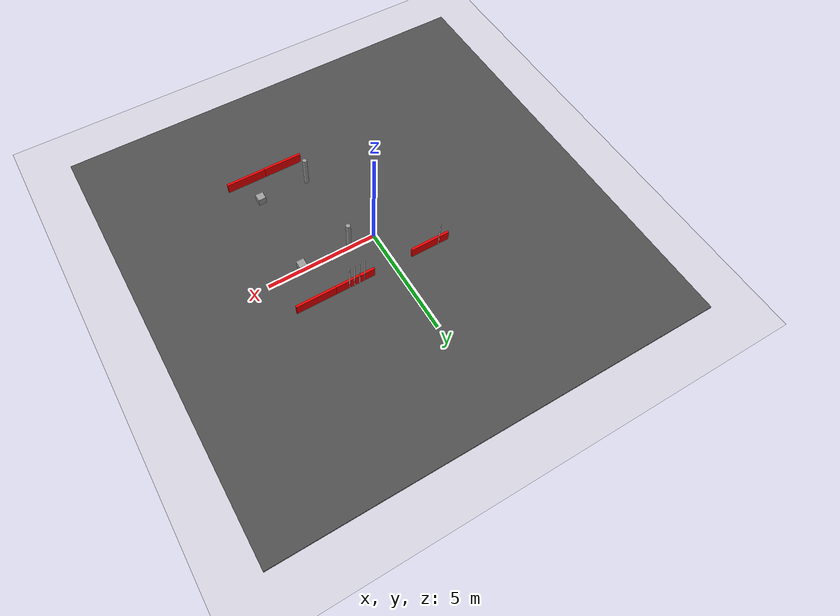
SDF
<sdf version="1.7">
 <world name="default">
  <model name="ground_plane">
   <static>1</static>
   <link name="link">
    <collision name="collision">
     <geometry><plane><normal>0 0 1</normal><size>100 100</size></plane></geometry>
     <surface><friction><ode><mu>100</mu><mu2>50</mu2></ode></friction></surface>
    </collision>
    <visual name="visual">
     <cast_shadows>0</cast_shadows>
     <geometry><plane><normal>0 0 1</normal><size>100 100</size></plane></geometry>
     <material>
      <script><uri>file://media/materials/scripts/gazebo.material</uri><name>Gazebo/Grey</name></script>
     </material>
    </visual>
   </link>
  </model>
  <model name="asphalt_plane">
   <static>1</static>
   <link name="link">
    <collision name="collision"><geometry><box><size>20 20 0.1</size></box></geometry></collision>
    <visual name="visual">
     <cast_shadows>0</cast_shadows>
     <geometry><box><size>20 20 0.1</size></box></geometry>
     <material>
      <script>
       <uri>model://asphalt_plane/materials/scripts</uri>
       <uri>model://asphalt_plane/materials/textures</uri>
       <name>vrc/asphalt</name>
      </script>
     </material>
    </visual>
    <velocity_decay><linear>0</linear><angular>0</angular></velocity_decay>
   </link>
   <pose>0.000359 -0.189252 0 0 -0 0</pose>
  </model>
  <model name="circular_reflector_0_clone">
   <static>1</static>
   <pose>1.17274 -0.124319 0 0 -0 0</pose>
   <link name="link">
    <inertial>
     <mass>1</mass>
     <inertia><ixx>0</ixx><ixy>0</ixy><ixz>0</ixz><iyy>0</iyy><iyz>0</iyz><izz>0</izz></inertia>
    </inertial>
    <collision name="collision">
     <laser_retro>1000</laser_retro>
     <geometry><cylinder><radius>0.05</radius><length>1</length></cylinder></geometry>
    </collision>
    <visual name="visual">
     <geometry><cylinder><radius>0.1</radius><length>3</length></cylinder></geometry>
     <material>
      <script><name>Gazebo/Grey</name><uri>file://media/materials/scripts/gazebo.material</uri></script>
      <ambient>1 1 1 1</ambient>
      <diffuse>1 1 1 1</diffuse>
      <specular>1 1 1 1</specular>
      <emissive>1 1 1 1</emissive>
     </material>
     <laser_retro>1000</laser_retro>
    </visual>
   </link>
  </model>
  <model name="circular_reflector_0_clone_clone">
   <static>1</static>
   <pose>1.12879 -4.06871 0 0 -0 0</pose>
   <link name="link">
    <inertial>
     <mass>1</mass>
     <inertia><ixx>0</ixx><ixy>0</ixy><ixz>0</ixz><iyy>0</iyy><iyz>0</iyz><izz>0</izz></inertia>
    </inertial>
    <collision name="collision">
     <laser_retro>1000</laser_retro>
     <geometry><cylinder><radius>0.05</radius><length>1</length></cylinder></geometry>
    </collision>
    <visual name="visual">
     <geometry><cylinder><radius>0.1</radius><length>3</length></cylinder></geometry>
     <material>
      <script><name>Gazebo/Grey</name><uri>file://media/materials/scripts/gazebo.material</uri></script>
      <ambient>1 1 1 1</ambient>
      <diffuse>1 1 1 1</diffuse>
      <specular>1 1 1 1</specular>
      <emissive>1 1 1 1</emissive>
     </material>
     <laser_retro>1000</laser_retro>
    </visual>
   </link>
  </model>
  <model name="square_reflector">
   <static>1</static>
   <pose>3.36137 -4.08403 0.221803 0 -0 0</pose>
   <link name="link">
    <inertial>
     <mass>1</mass>
     <inertia><ixx>0</ixx><ixy>0</ixy><ixz>0</ixz><iyy>0</iyy><iyz>0</iyz><izz>0</izz></inertia>
    </inertial>
    <collision name="collision">
     <laser_retro>1000</laser_retro>
     <geometry><box><size>0.35 0.35 0.35</size></box></geometry>
    </collision>
    <visual name="visual">
     <geometry><box><size>0.35 0.35 0.35</size></box></geometry>
     <material>
      <script><name>Gazebo/Grey</name><uri>file://media/materials/scripts/gazebo.material</uri></script>
      <ambient>1 1 1 1</ambient>
      <diffuse>1 1 1 1</diffuse>
      <specular>1 1 1 1</specular>
      <emissive>1 1 1 1</emissive>
     </material>
     <laser_retro>1000</laser_retro>
    </visual>
   </link>
  </model>
  <model name="square_reflector_clone">
   <static>1</static>
   <pose>3.39259 -0.127452 0.221803 0 -0 0</pose>
   <link name="link">
    <inertial>
     <mass>1</mass>
     <inertia><ixx>0</ixx><ixy>0</ixy><ixz>0</ixz><iyy>0</iyy><iyz>0</iyz><izz>0</izz></inertia>
    </inertial>
    <collision name="collision">
     <laser_retro>1000</laser_retro>
     <geometry><box><size>0.35 0.35 0.35</size></box></geometry>
    </collision>
    <visual name="visual">
     <geometry><box><size>0.35 0.35 0.35</size></box></geometry>
     <material>
      <script><name>Gazebo/Grey</name><uri>file://media/materials/scripts/gazebo.material</uri></script>
      <ambient>1 1 1 1</ambient>
      <diffuse>1 1 1 1</diffuse>
      <specular>1 1 1 1</specular>
      <emissive>1 1 1 1</emissive>
     </material>
     <laser_retro>1000</laser_retro>
    </visual>
   </link>
  </model>
  <model name="barrier_w_reflector_clone_10">
   <static>1</static>
   <pose>1.73278 -5.26079 0.292208 0 -0 0</pose>
   <link name="link">
    <inertial>
     <mass>1</mass>
     <inertia><ixx>0</ixx><ixy>0</ixy><ixz>0</ixz><iyy>0</iyy><iyz>0</iyz><izz>0</izz></inertia>
    </inertial>
    <collision name="collision">
     <laser_retro>1000</laser_retro>
     <geometry><box><size>1.8 0.1 0.5</size></box></geometry>
    </collision>
    <visual name="visual">
     <geometry><box><size>1.8 0.1 0.5</size></box></geometry>
     <material>
      <ambient>1 0 0 1</ambient>
      <diffuse>1 0 0 1</diffuse>
      <specular>1 0 0 1</specular>
      <emissive>1 0 0 1</emissive>
     </material>
     <laser_retro>1000</laser_retro>
    </visual>
   </link>
  </model>
  <model name="barrier_w_reflector_clone_11">
   <static>1</static>
   <pose>3.4913 -5.25878 0.292208 0 -0 0</pose>
   <link name="link">
    <inertial>
     <mass>1</mass>
     <inertia><ixx>0</ixx><ixy>0</ixy><ixz>0</ixz><iyy>0</iyy><iyz>0</iyz><izz>0</izz></inertia>
    </inertial>
    <collision name="collision">
     <laser_retro>1000</laser_retro>
     <geometry><box><size>1.8 0.1 0.5</size></box></geometry>
    </collision>
    <visual name="visual">
     <geometry><box><size>1.8 0.1 0.5</size></box></geometry>
     <material>
      <ambient>1 0 0 1</ambient>
      <diffuse>1 0 0 1</diffuse>
      <specular>1 0 0 1</specular>
      <emissive>1 0 0 1</emissive>
     </material>
     <laser_retro>1000</laser_retro>
    </visual>
   </link>
  </model>
  <model name="barrier_clone">
   <static>1</static>
   <pose>1.86789 1.66484 0.312489 0 -0 0</pose>
   <link name="link">
    <inertial>
     <mass>1</mass>
     <inertia><ixx>0</ixx><ixy>0</ixy><ixz>0</ixz><iyy>0</iyy><iyz>0</iyz><izz>0</izz></inertia>
    </inertial>
    <collision name="collision"><geometry><box><size>1.8 0.1 0.5</size></box></geometry></collision>
    <visual name="visual">
     <geometry><box><size>1.8 0.1 0.5</size></box></geometry>
     <material>
      <ambient>1 0 0 1</ambient>
      <diffuse>1 0 0 1</diffuse>
      <specular>1 0 0 1</specular>
      <emissive>1 0 0 1</emissive>
     </material>
    </visual>
   </link>
  </model>
  <model name="barrier_clone_0">
   <static>1</static>
   <pose>3.66637 1.67023 0.312489 0 -0 0</pose>
   <link name="link">
    <inertial>
     <mass>1</mass>
     <inertia><ixx>0</ixx><ixy>0</ixy><ixz>0</ixz><iyy>0</iyy><iyz>0</iyz><izz>0</izz></inertia>
    </inertial>
    <collision name="collision"><geometry><box><size>1.8 0.1 0.5</size></box></geometry></collision>
    <visual name="visual">
     <geometry><box><size>1.8 0.1 0.5</size></box></geometry>
     <material>
      <ambient>1 0 0 1</ambient>
      <diffuse>1 0 0 1</diffuse>
      <specular>1 0 0 1</specular>
      <emissive>1 0 0 1</emissive>
     </material>
    </visual>
   </link>
  </model>
  <model name="barrier_clone_6">
   <static>1</static>
   <pose>-1.72921 1.67051 0.312489 0 -0 0</pose>
   <link name="link">
    <inertial>
     <mass>1</mass>
     <inertia><ixx>0</ixx><ixy>0</ixy><ixz>0</ixz><iyy>0</iyy><iyz>0</iyz><izz>0</izz></inertia>
    </inertial>
    <collision name="collision"><geometry><box><size>1.8 0.1 0.5</size></box></geometry></collision>
    <visual name="visual">
     <geometry><box><size>1.8 0.1 0.5</size></box></geometry>
     <material>
      <ambient>1 0 0 1</ambient>
      <diffuse>1 0 0 1</diffuse>
      <specular>1 0 0 1</specular>
      <emissive>1 0 0 1</emissive>
     </material>
    </visual>
   </link>
  </model>
  <model name="reflective_tape_5cm_clone_2_clone_15">
   <static>1</static>
   <pose>-2.14778 1.72247 0 0 -0 0</pose>
   <link name="link">
    <inertial>
     <mass>0.01</mass>
     <inertia><ixx>1e-06</ixx><ixy>0</ixy><ixz>0</ixz><iyy>1e-06</iyy><iyz>0</iyz><izz>1e-06</izz></inertia>
    </inertial>
    <collision name="collision">
     <laser_retro>1000</laser_retro>
     <geometry><box><size>0.05 0.005 3</size></box></geometry>
    </collision>
    <visual name="visual">
     <geometry><box><size>0.05 0.005 3</size></box></geometry>
     <material>
      <script><name>Gazebo/WhiteGlow</name><uri>file://media/materials/scripts/gazebo.material</uri></script>
      <ambient>1 1 1 1</ambient>
      <diffuse>1 1 1 1</diffuse>
      <specular>1 1 1 1</specular>
      <emissive>1 1 1 1</emissive>
     </material>
     <laser_retro>1000</laser_retro>
    </visual>
   </link>
  </model>
  <model name="reflective_tape_5cm_clone_2_clone_16">
   <static>1</static>
   <pose>2.14483 1.71294 0 0 -0 0</pose>
   <link name="link">
    <inertial>
     <mass>0.01</mass>
     <inertia><ixx>1e-06</ixx><ixy>0</ixy><ixz>0</ixz><iyy>1e-06</iyy><iyz>0</iyz><izz>1e-06</izz></inertia>
    </inertial>
    <collision name="collision">
     <laser_retro>1000</laser_retro>
     <geometry><box><size>0.05 0.005 3</size></box></geometry>
    </collision>
    <visual name="visual">
     <geometry><box><size>0.05 0.005 3</size></box></geometry>
     <material>
      <script><name>Gazebo/WhiteGlow</name><uri>file://media/materials/scripts/gazebo.material</uri></script>
      <ambient>1 1 1 1</ambient>
      <diffuse>1 1 1 1</diffuse>
      <specular>1 1 1 1</specular>
      <emissive>1 1 1 1</emissive>
     </material>
     <laser_retro>1000</laser_retro>
    </visual>
   </link>
  </model>
  <model name="reflective_tape_5cm_clone_2_clone_17">
   <static>1</static>
   <pose>1.92057 1.71756 0 0 -0 0</pose>
   <link name="link">
    <inertial>
     <mass>0.01</mass>
     <inertia><ixx>1e-06</ixx><ixy>0</ixy><ixz>0</ixz><iyy>1e-06</iyy><iyz>0</iyz><izz>1e-06</izz></inertia>
    </inertial>
    <collision name="collision">
     <laser_retro>1000</laser_retro>
     <geometry><box><size>0.05 0.005 3</size></box></geometry>
    </collision>
    <visual name="visual">
     <geometry><box><size>0.05 0.005 3</size></box></geometry>
     <material>
      <script><name>Gazebo/WhiteGlow</name><uri>file://media/materials/scripts/gazebo.material</uri></script>
      <ambient>1 1 1 1</ambient>
      <diffuse>1 1 1 1</diffuse>
      <specular>1 1 1 1</specular>
      <emissive>1 1 1 1</emissive>
     </material>
     <laser_retro>1000</laser_retro>
    </visual>
   </link>
  </model>
  <model name="reflective_tape_5cm_clone_2_clone_18">
   <static>1</static>
   <pose>1.68904 1.71441 0 0 -0 0</pose>
   <link name="link">
    <inertial>
     <mass>0.01</mass>
     <inertia><ixx>1e-06</ixx><ixy>0</ixy><ixz>0</ixz><iyy>1e-06</iyy><iyz>0</iyz><izz>1e-06</izz></inertia>
    </inertial>
    <collision name="collision">
     <laser_retro>1000</laser_retro>
     <geometry><box><size>0.05 0.005 3</size></box></geometry>
    </collision>
    <visual name="visual">
     <geometry><box><size>0.05 0.005 3</size></box></geometry>
     <material>
      <script><name>Gazebo/WhiteGlow</name><uri>file://media/materials/scripts/gazebo.material</uri></script>
      <ambient>1 1 1 1</ambient>
      <diffuse>1 1 1 1</diffuse>
      <specular>1 1 1 1</specular>
      <emissive>1 1 1 1</emissive>
     </material>
     <laser_retro>1000</laser_retro>
    </visual>
   </link>
  </model>
  <model name="reflective_tape_5cm_clone_2_clone_19">
   <static>1</static>
   <pose>1.4407 1.71311 0 0 -0 0</pose>
   <link name="link">
    <inertial>
     <mass>0.01</mass>
     <inertia><ixx>1e-06</ixx><ixy>0</ixy><ixz>0</ixz><iyy>1e-06</iyy><iyz>0</iyz><izz>1e-06</izz></inertia>
    </inertial>
    <collision name="collision">
     <laser_retro>1000</laser_retro>
     <geometry><box><size>0.05 0.005 3</size></box></geometry>
    </collision>
    <visual name="visual">
     <geometry><box><size>0.05 0.005 3</size></box></geometry>
     <material>
      <script><name>Gazebo/WhiteGlow</name><uri>file://media/materials/scripts/gazebo.material</uri></script>
      <ambient>1 1 1 1</ambient>
      <diffuse>1 1 1 1</diffuse>
      <specular>1 1 1 1</specular>
      <emissive>1 1 1 1</emissive>
     </material>
     <laser_retro>1000</laser_retro>
    </visual>
   </link>
  </model>
 </world>
</sdf>
